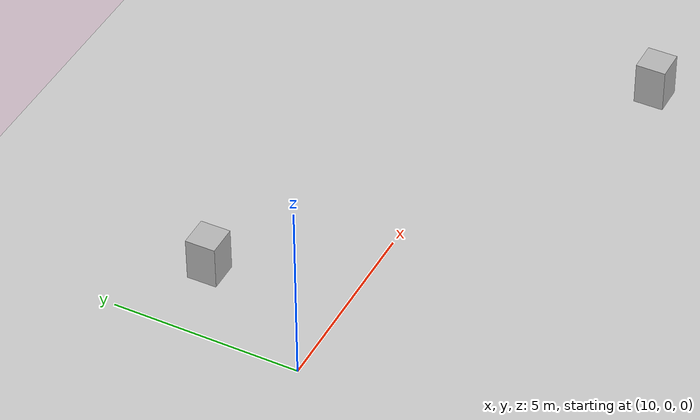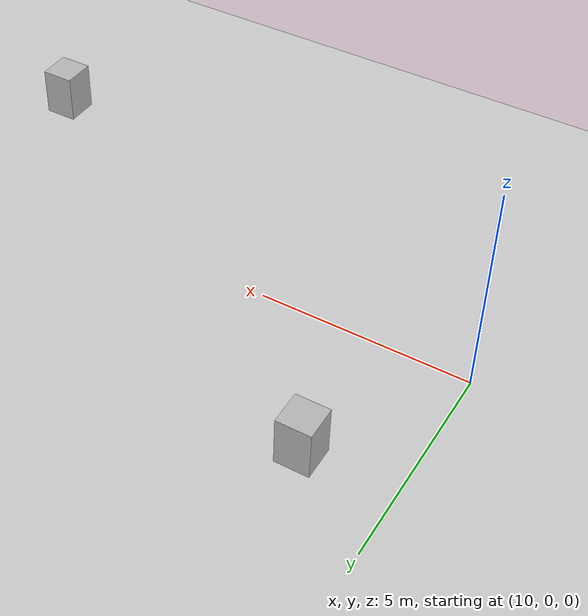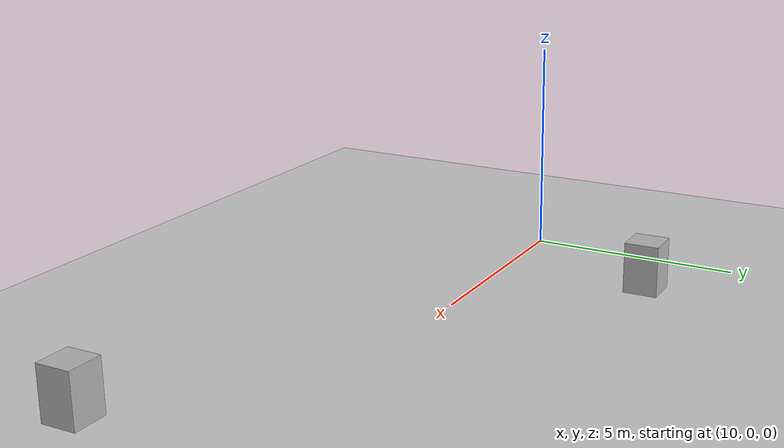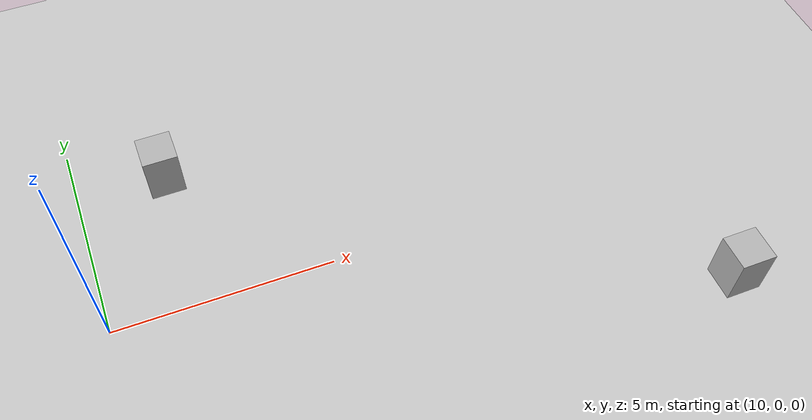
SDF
<?xml version="1.0"?>
<sdf version="1.6">
  <world name="v2-04g-r4-r1-cruise-s5092">
    <gravity>0 0 -9.81</gravity>
    <physics name="v2_deterministic" type="ode">
      <max_step_size>0.002</max_step_size>
      <real_time_update_rate>500</real_time_update_rate>
    </physics>
    <include>
      <uri>model://sun</uri>
    </include>
    <include>
      <uri>model://ground_plane</uri>
    </include>
    <model name="cruise-left">
      <static>true</static>
      <pose>12.039289349 3.529032519 0.600000000 0 0 0.008376788</pose>
      <link name="link">
        <collision name="collision">
          <geometry>
            <box>
              <size>0.800000 0.800000 1.200000</size>
            </box>
          </geometry>
        </collision>
        <visual name="visual">
          <geometry>
            <box>
              <size>0.800000 0.800000 1.200000</size>
            </box>
          </geometry>
        </visual>
      </link>
    </model>
    <model name="cruise-right">
      <static>true</static>
      <pose>23.019778056 -3.531783637 0.600000000 0 0 0.002364533</pose>
      <link name="link">
        <collision name="collision">
          <geometry>
            <box>
              <size>0.800000 0.800000 1.200000</size>
            </box>
          </geometry>
        </collision>
        <visual name="visual">
          <geometry>
            <box>
              <size>0.800000 0.800000 1.200000</size>
            </box>
          </geometry>
        </visual>
      </link>
    </model>
  </world>
</sdf>
